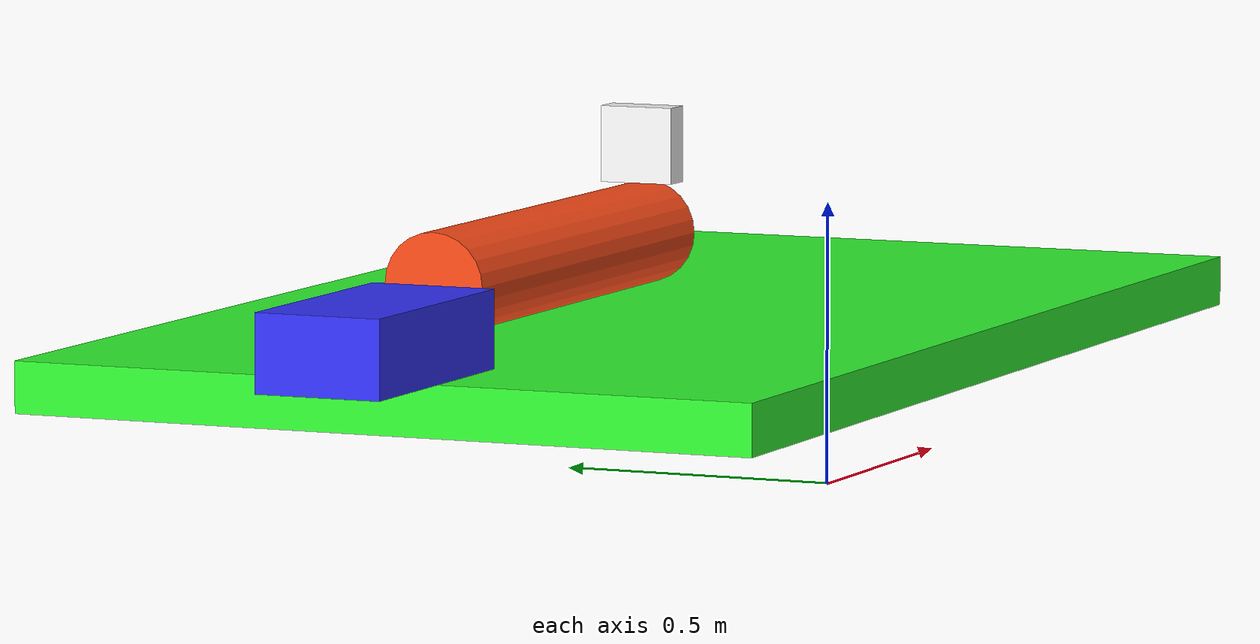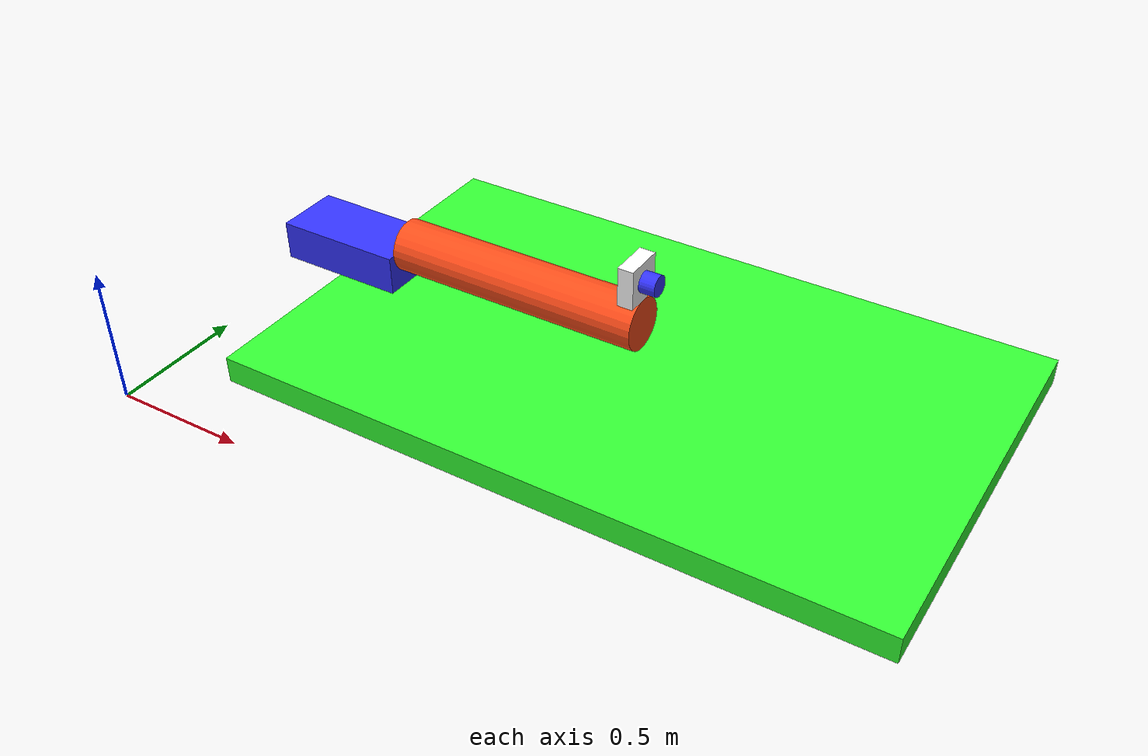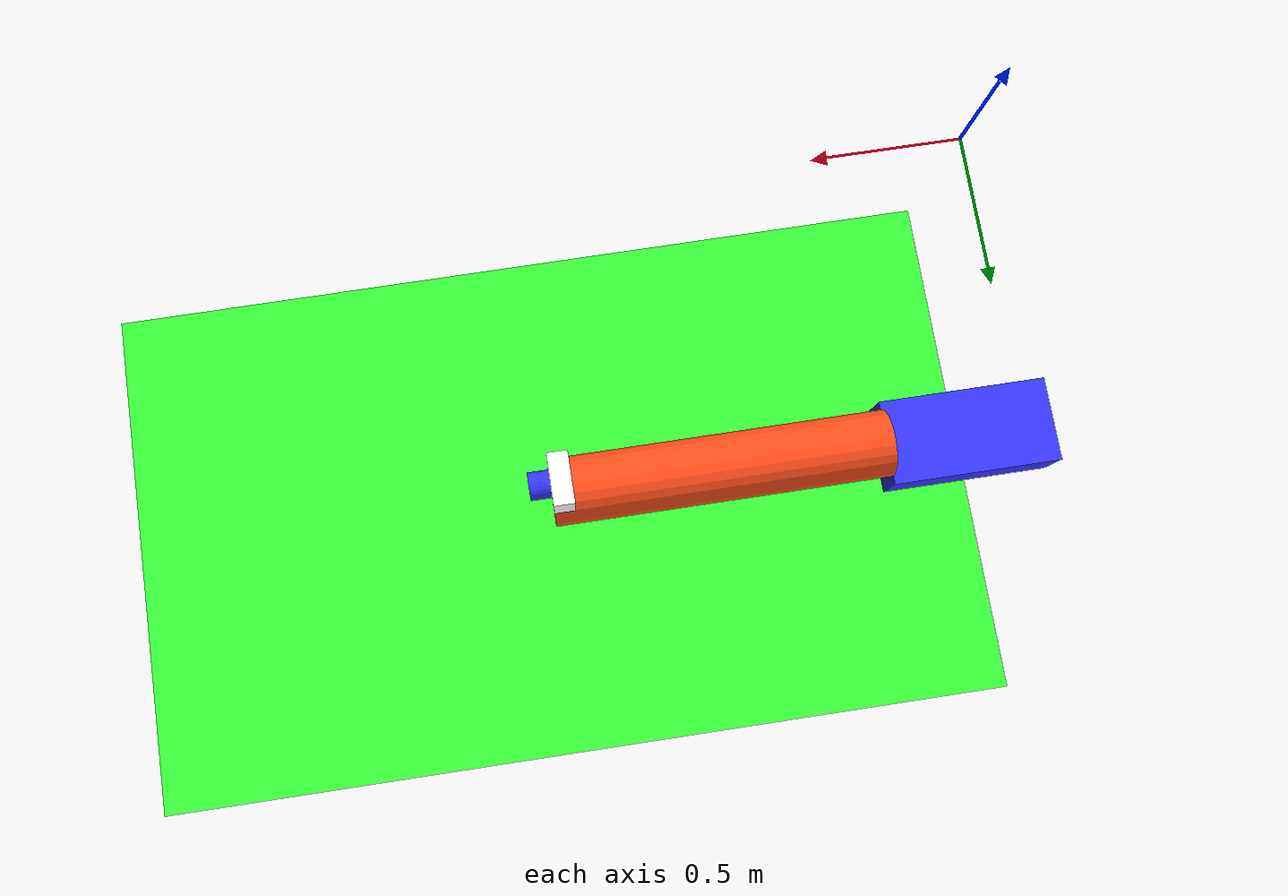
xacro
<?xml version="1.0"?>
<robot xmlns:xacro="http://www.ros.org/wiki/xacro"  name="robot">

    <!-- This is an example of a URDF. -->
    <!-- As we move through the file, new things to note will be pointed out. -->
    <!-- It's not meant an example of GOOD design, but an example of some of the various features of URDF/xacro. -->

    <!-- This will include all the contents of example_include.xacro first. Go check it out! -->
    <xacro:include filename="example_include.xacro" />

    <!-- This first link called "world" is empty -->
    <link name="world"></link>

    <!-- A simple fixed joint from our empty world link, to our base. -->
    <!-- The base origin is offset from the world origin. -->
    <joint name="base_joint" type="fixed">
        <origin xyz="1.5 1.0 0" rpy="0 0 0"/>
        <parent link="world"/>
        <child link="base_link"/>
    </joint>

    <!-- base_link is a large rectangular plate. Some things to note: -->
    <!-- - We set the visual origin Z to half the box height, so that the link origin sits at the bottom of the box -->
    <!-- - We set the collision to be identical to the visual -->
    <!-- - We specified the colour manually (but still need to enter a name) -->
    <!-- - We specified all the inertial parameters manually -->
    <link name="base_link">
        <visual>
            <origin xyz="0 0 0.05" rpy="0 0 0"/>
            <geometry>
                <box size="2.5 1.5 0.1" />
            </geometry>
            <material name="green">
                <color rgba="0.2 1 0.2 1"/>
            </material>
        </visual>
        <collision>
            <origin xyz="0 0 0.05" rpy="0 0 0"/>
            <geometry>
                <box size="2.5 1.5 0.1" />
            </geometry>
        </collision>
        <inertial>
            <origin xyz="0 0 0.05" rpy="0 0 0"/>
            <mass value="12" />
            <inertia ixx="2.26" ixy="0.0" ixz="0.0" iyy="6.26" iyz="0.0" izz="8.5" />
        </inertial>
    </link>

    <!-- slider_joint lets slider_link move back and forth along the top of the base in one dimension.  -->
    <!-- - Origin is set to one of the top edges of the base_link box, so that our link skims across the top  -->
    <!-- - It moves along the X axis -->
    <!-- - We need to specify limits for the motion -->
    <joint name="slider_joint" type="prismatic">
        <origin xyz="-1.25 0 0.1" rpy="0 0 0"/>
        <parent link="base_link"/>
        <child link="slider_link"/>
        <axis xyz="1 0 0"/>
        <limit lower="0" upper="2" velocity="100" effort="100"/>
        <dynamics damping="10.0" friction="10.0"/> <!-- stops the joint flopping around in Gazebo (video #8) -->
    </joint>

    <!-- slider_link is the box skimming across the top of the base. Its parameters are similar to the base_link, however: -->
    <!-- - Instead of explicitly describing a colour, it uses the named material "blue". It knows about "blue" that material was included in example_include.xacro. -->
    <!-- - Instead of explicitly describing the inertia, we use a macro that was defined in the example_include.xacro -->

    <link name="slider_link">
        <visual>
            <origin xyz="0 0 0.075" rpy="0 0 0"/>
            <geometry>
                <box size="0.5 0.25 0.15" />
            </geometry>
            <material name="blue" />
        </visual>
        <collision>
            <origin xyz="0 0 0.075" rpy="0 0 0"/>
            <geometry>
                <box size="0.5 0.25 0.15" />
            </geometry>
        </collision>
        <xacro:inertial_box mass="0.5" x="0.5" y="0.25" z="0.15">
            <origin xyz="0 0 0.075" rpy="0 0 0"/>
        </xacro:inertial_box>
    </link>

    <!-- arm_joint describes the rotation of the arm and is centred around the top corner of the slider box. -->
    <!-- - The axis of rotation is -1 in Y, so that positive is "up" -->
    <!-- - The upper limit uses xacro's mathematical features -->
    <joint name="arm_joint" type="revolute">
        <origin xyz="0.25 0 0.15" rpy="0 0 0"/>
        <parent link="slider_link"/>
        <child link="arm_link"/>
        <axis xyz="0 -1 0"/>
        <limit lower="0" upper="${pi/2}" velocity="100" effort="100"/>
        <dynamics damping="10.0" friction="10.0"/>
    </joint>

    <!-- arm_link describes the arm -->
    <!-- - We use the "property" feature to define the arm length and radius and use them multiple times -->
    <!-- - The visual/collision origin is set to halfway along the length (similar to the box), but also with a rotation (again using the mathematical features). -->
    <!--   This is because the cylinder extends along the Z axis by default, but we want it to be along the X axis (when the joint is at 0) -->

    <xacro:property name="arm_length" value="1" />
    <xacro:property name="arm_radius" value="0.1" />
    <link name="arm_link">
        <visual>
            <origin xyz="${arm_length/2} 0 0" rpy="0 ${pi/2} 0"/>
            <geometry>
                <cylinder length="${arm_length}" radius="${arm_radius}" />
            </geometry>
            <material name="orange" />
        </visual>
        <collision>
            <origin xyz="${arm_length/2} 0 0" rpy="0 ${pi/2} 0"/>
            <geometry>
                <cylinder length="${arm_length}" radius="${arm_radius}" />
            </geometry>
        </collision>
        <xacro:inertial_cylinder mass="1.0" length="${arm_length}" radius="${arm_radius}">
            <origin xyz="${arm_length/2} 0 0" rpy="0 ${pi/2} 0"/>
        </xacro:inertial_cylinder>
    </link>

    <!-- camera_joint describes where the camera is relative to the arm -->
    <!-- - Even though the camera isn't moving relative to the arm, it will probably be helpful to have its own link/frame rather than just adding more visuals to the arm -->
    <!-- - For this example, the camera_link origin will be at the centre of the camera's "sensor" -->
    <joint name="camera_joint" type="fixed">
        <origin xyz="${arm_length} 0 ${arm_radius + 0.075}" rpy="0 0 0"/>
        <parent link="arm_link"/>
        <child link="camera_link"/>
    </joint>

    <!-- camera_link describes the camera at the end of the arm -->
    <!-- - It has multiple visual elements, which ultimately get combined together -->
    <!-- - Even if we specify different materials, RViz will just colour them all the same as the first -->
    <!-- - Although we could also specify multiple collision geometries, instead we just use a single box that encompasses the whole camera -->
    <link name="camera_link">
        <visual>
            <origin xyz="-0.03 0 0" rpy="0 0 0"/>
            <geometry>
                <box size="0.06 0.15 0.15" />
            </geometry>
            <material name="white" />
        </visual>
        <visual>
            <origin xyz="0.03 0 0" rpy="0 ${pi/2} 0"/>
            <geometry>
                <cylinder length="0.06" radius="0.04" />
            </geometry>
            <material name="blue" />
        </visual>
        <collision>
            <origin xyz="0.0 0 0" rpy="0 0 0"/>
            <geometry>
                <box size="0.12 0.15 0.15" />
            </geometry>
        </collision>
        <xacro:inertial_box mass="0.1" x="0.12" y="0.15" z="0.15">
            <origin xyz="0.0 0 0" rpy="0 0 0"/>
        </xacro:inertial_box>
    </link>

    <xacro:include filename="example_gazebo.xacro" />

</robot>

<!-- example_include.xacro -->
<robot xmlns:xacro="http://www.ros.org/wiki/xacro" >

    <!-- This file is not a robot in and of itself, it just contains some useful tags that could be included in any robot -->

    <!-- Specify some colours -->

    <material name="white">
        <color rgba="1 1 1 1"/>
    </material>

    <material name="orange">
        <color rgba="1 0.3 0.1 1"/>
    </material>

    <material name="blue">
        <color rgba="0.2 0.2 1 1"/>
    </material>

    <!-- Specify some standard inertial calculations https://en.wikipedia.org/wiki/List_of_moments_of_inertia -->
    <!-- These make use of xacro's mathematical functionality -->

    <xacro:macro name="inertial_sphere" params="mass radius *origin">
        <inertial>
            <xacro:insert_block name="origin"/>
            <mass value="${mass}" />
            <inertia ixx="${(2/5) * mass * (radius*radius)}" ixy="0.0" ixz="0.0"
                    iyy="${(2/5) * mass * (radius*radius)}" iyz="0.0"
                    izz="${(2/5) * mass * (radius*radius)}" />
        </inertial>
    </xacro:macro>

    <xacro:macro name="inertial_box" params="mass x y z *origin">
        <inertial>
            <xacro:insert_block name="origin"/>
            <mass value="${mass}" />
            <inertia ixx="${(1/12) * mass * (y*y+z*z)}" ixy="0.0" ixz="0.0"
                    iyy="${(1/12) * mass * (x*x+z*z)}" iyz="0.0"
                    izz="${(1/12) * mass * (x*x+y*y)}" />
        </inertial>
    </xacro:macro>

    <xacro:macro name="inertial_cylinder" params="mass length radius *origin">
        <inertial>
            <xacro:insert_block name="origin"/>
            <mass value="${mass}" />
            <inertia ixx="${(1/12) * mass * (3*radius*radius + length*length)}" ixy="0.0" ixz="0.0"
                    iyy="${(1/12) * mass * (3*radius*radius + length*length)}" iyz="0.0"
                    izz="${(1/2) * mass * (radius*radius)}" />
        </inertial>
    </xacro:macro>

</robot>

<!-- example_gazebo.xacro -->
<robot xmlns:xacro="http://www.ros.org/wiki/xacro">

    <!-- Ported from Gazebo Classic to the new Gazebo (Harmonic, used with ROS 2 Jazzy), following video #10. -->

    <!-- To include it add the following line -->

    <!-- Plugins in the new Gazebo don't talk to ROS directly. They publish/subscribe to Gazebo topics,
            and ros_gz_bridge (see config/gz_bridge.yaml) copies those across to ROS topics. -->

    <!-- This plugin will publish the joint states for the selected joints
            (which robot_state_publisher can then use to broadcast the approprate tf). -->
    <!-- Gazebo topic: joint_states  ->  bridged to ROS topic /joint_states -->

    <gazebo>
        <plugin filename="gz-sim-joint-state-publisher-system"
            name="gz::sim::systems::JointStatePublisher">
            <topic>joint_states</topic>
            <joint_name>slider_joint</joint_name>
            <joint_name>arm_joint</joint_name>
        </plugin>
    </gazebo>

    <!-- This plugin will read a JointTrajectory message and move the joints there using PID position control.
            It replaces the Classic gazebo_ros_joint_pose_trajectory plugin. -->
    <!-- Gazebo topic: set_joint_trajectory  <-  bridged from ROS topic /set_joint_trajectory -->
    <gazebo>
        <plugin filename="gz-sim-joint-trajectory-controller-system"
            name="gz::sim::systems::JointTrajectoryController">
            <topic>set_joint_trajectory</topic>
            <joint_name>slider_joint</joint_name>
            <initial_position>0.0</initial_position>
            <position_p_gain>200</position_p_gain>
            <position_i_gain>20</position_i_gain>
            <position_d_gain>20</position_d_gain>
            <position_i_min>-100</position_i_min>
            <position_i_max>100</position_i_max>
            <position_cmd_min>-100</position_cmd_min>
            <position_cmd_max>100</position_cmd_max>
            <joint_name>arm_joint</joint_name>
            <initial_position>0.0</initial_position>
            <position_p_gain>300</position_p_gain>
            <position_i_gain>50</position_i_gain>
            <position_d_gain>20</position_d_gain>
            <position_i_min>-100</position_i_min>
            <position_i_max>100</position_i_max>
            <position_cmd_min>-100</position_cmd_min>
            <position_cmd_max>100</position_cmd_max>
        </plugin>
    </gazebo>

    <!-- The next section shows an example of adding a sensor, in this case a depth (RGB-D) camera. -->

    <!-- First, create the link and joint for the optical frame -->

    <joint name="camera_optical_joint" type="fixed">
        <origin xyz="0 0 0" rpy="-1.571 0 -1.571" />
        <parent link="camera_link" />
        <child link="camera_link_optical" />
    </joint>

    <link name="camera_link_optical"></link>

    <!-- Add a gazebo tag for the ORIGINAL camera_link, and set gz_frame_id to the optical frame so that ROS can orient things correctly. -->
    <!-- "rgbd_camera" gives us a colour image, a depth image and a point cloud, all from one sensor.
            For a plain colour camera, change the type to "camera". -->
    <!-- Sensors only work if the world loads the Sensors system plugin (see worlds/empty.sdf). -->
    <!-- Gazebo topics: camera/image, camera/depth_image, camera/points, camera/camera_info -->
    <gazebo reference="camera_link">
        <sensor type="rgbd_camera" name="my_camera">
            <topic>camera</topic>
            <gz_frame_id>camera_link_optical</gz_frame_id>
            <update_rate>20</update_rate>
            <always_on>true</always_on>
            <visualize>true</visualize>
            <camera name="cam">
                <camera_info_topic>camera/camera_info</camera_info_topic>
                <horizontal_fov>1.3962634</horizontal_fov>
                <image>
                    <width>640</width>
                    <height>480</height>
                    <format>R8G8B8</format>
                </image>
                <clip>
                    <near>0.02</near>
                    <far>300</far>
                </clip>
                <depth_camera>
                    <clip>
                        <near>0.1</near>
                        <far>100</far>
                    </clip>
                </depth_camera>
                <noise>
                    <type>gaussian</type>
                    <mean>0.0</mean>
                    <stddev>0.007</stddev>
                </noise>
            </camera>
        </sensor>
    </gazebo>

</robot>
